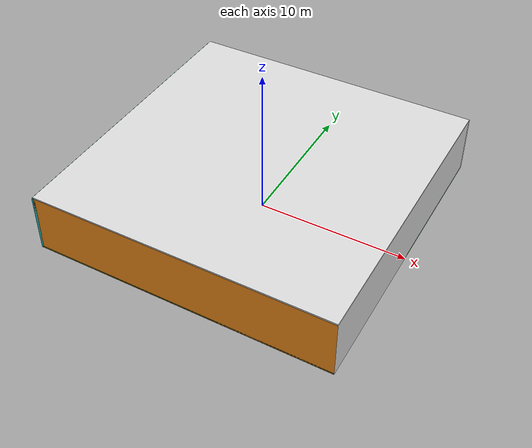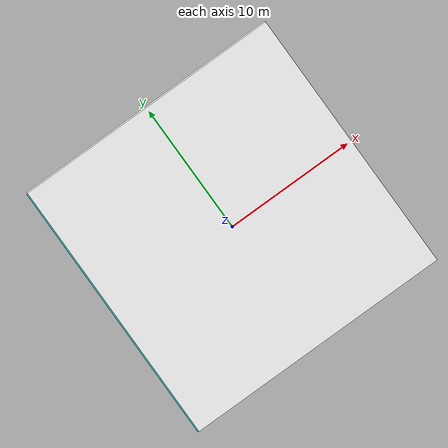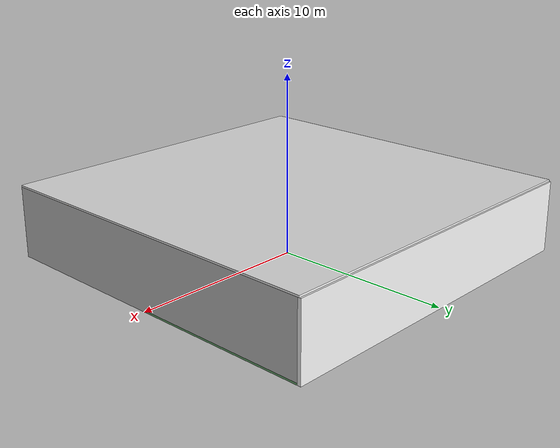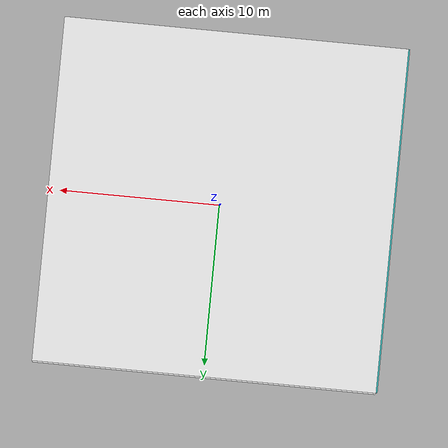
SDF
<sdf version="1.4">
 <world name="default">
  <physics type="ode">
   <max_step_size>0.001</max_step_size>
   <real_time_factor>1</real_time_factor>
   <real_time_update_rate>1000</real_time_update_rate>
   <gravity>0 0 -9.8</gravity>
  </physics>
  <scene><ambient>0.4 0.4 0.4 1</ambient><background>0.7 0.7 0.7 1</background><shadows>1</shadows></scene>
  <model name="Surrounding">
   <static>1</static>
   <link name="Ceiling">
    <collision name="Ceiling_Collision"><geometry><box><size>20 20 0.1</size></box></geometry></collision>
    <visual name="Ceiling_Visual">
     <geometry><box><size>20 20 0.1</size></box></geometry>
     <material>
      <script><uri>file://media/materials/scripts/gazebo.material</uri><name>Gazebo/WhiteGlow</name></script>
     </material>
    </visual>
    <pose>0 0 4.05 0 0 0</pose>
   </link>
   <link name="Wall_South">
    <collision name="Wall_South_Collision">
     <geometry><box><size>20 0 4</size></box></geometry>
     <pose>0 0 2 0 -0 0</pose>
    </collision>
    <visual name="Wall_South_Visual">
     <pose>0 0 2 0 -0 0</pose>
     <geometry><box><size>20 0 4</size></box></geometry>
     <material>
      <script><uri>file://media/materials/scripts/gazebo.material</uri><name>Gazebo/Orange</name></script>
     </material>
    </visual>
    <velocity_decay><linear>0</linear><angular>0</angular></velocity_decay>
    <pose>0 -10 0 0 -0 0</pose>
   </link>
   <link name="Wall_East">
    <collision name="Wall_21_Collision">
     <geometry><box><size>20 0 4</size></box></geometry>
     <pose>0 0 2 0 -0 0</pose>
    </collision>
    <visual name="Wall_21_Visual">
     <pose>0 0 2 0 -0 0</pose>
     <geometry><box><size>20 0 4</size></box></geometry>
     <material>
      <script><uri>file://media/materials/scripts/gazebo.material</uri><name>Gazebo/LightOff</name></script>
     </material>
    </visual>
    <velocity_decay><linear>0</linear><angular>0</angular></velocity_decay>
    <pose>10 0 0 0 -0 1.5708</pose>
   </link>
   <link name="Wall_North">
    <collision name="Wall_22_Collision">
     <geometry><box><size>20 0.2 4</size></box></geometry>
     <pose>0 0 2 0 -0 0</pose>
    </collision>
    <visual name="Wall_22_Visual">
     <pose>0 0 2 0 -0 0</pose>
     <geometry><box><size>20 0.2 4</size></box></geometry>
     <material>
      <script><uri>file://media/materials/scripts/gazebo.material</uri><name>Gazebo/White</name></script>
     </material>
    </visual>
    <velocity_decay><linear>0</linear><angular>0</angular></velocity_decay>
    <pose>0 10 0 0 -0 0</pose>
   </link>
   <link name="Wall_West">
    <collision name="Wall_23_Collision">
     <geometry><box><size>20 0.2 4</size></box></geometry>
     <pose>0 0 2 0 -0 0</pose>
    </collision>
    <visual name="Wall_23_Visual">
     <pose>0 0 2 0 -0 0</pose>
     <geometry><box><size>20 0.2 4</size></box></geometry>
     <material>
      <script>
       <uri>file://media/materials/scripts/gazebo.material</uri>
       <name>Gazebo/TurquoiseGlowOutline</name>
      </script>
     </material>
    </visual>
    <velocity_decay><linear>0</linear><angular>0</angular></velocity_decay>
    <pose>-10 0 0 0 0 -1.5708</pose>
   </link>
   <link name="Ground_link">
    <collision name="collision">
     <pose>0 0 .05 0 -0 0</pose>
     <geometry><box><size>20 20 0.1</size></box></geometry>
    </collision>
    <visual name="visual">
     <pose>0 0 .05 0 -0 0</pose>
     <geometry><box><size>20 20 0.1</size></box></geometry>
     <material>
      <script><uri>file://media/materials/scripts/gazebo.material</uri><name>Gazebo/GreenTransparent</name></script>
     </material>
    </visual>
   </link>
   <static>1</static>
  </model>
  <spherical_coordinates>
   <surface_model>EARTH_WGS84</surface_model>
   <latitude_deg>0</latitude_deg>
   <longitude_deg>0</longitude_deg>
   <elevation>0</elevation>
   <heading_deg>0</heading_deg>
  </spherical_coordinates>
  <light name="lightball_0" type="diffuse">
   <diffuse>0.8 0.8 0.8 1</diffuse>
   <specular>0.2 0.2 0.2 1</specular>
   <attenuation>
    <range>100</range>
    <constant>0.7</constant>
    <linear>0.01</linear>
    <quadratic>0.001</quadratic>
   </attenuation>
   <direction>-0.5 0.1 -0.9</direction>
   <pose>0.726740676656 1.87115726653 3.58168752835 0 0 0</pose>
  </light>
  <light name="lightball_1" type="diffuse">
   <diffuse>0.8 0.8 0.8 1</diffuse>
   <specular>0.2 0.2 0.2 1</specular>
   <attenuation>
    <range>100</range>
    <constant>0.7</constant>
    <linear>0.01</linear>
    <quadratic>0.001</quadratic>
   </attenuation>
   <direction>-0.5 0.1 -0.9</direction>
   <pose>-2.89785031682 -7.90008361087 0.897896944985 0 0 0</pose>
  </light>
  <light name="lightball_2" type="diffuse">
   <diffuse>0.8 0.8 0.8 1</diffuse>
   <specular>0.2 0.2 0.2 1</specular>
   <attenuation>
    <range>100</range>
    <constant>0.7</constant>
    <linear>0.01</linear>
    <quadratic>0.001</quadratic>
   </attenuation>
   <direction>-0.5 0.1 -0.9</direction>
   <pose>-8.97171014426 -6.13194956823 3.43686122142 0 0 0</pose>
  </light>
  <light name="lightball_3" type="diffuse">
   <diffuse>0.8 0.8 0.8 1</diffuse>
   <specular>0.2 0.2 0.2 1</specular>
   <attenuation>
    <range>100</range>
    <constant>0.7</constant>
    <linear>0.01</linear>
    <quadratic>0.001</quadratic>
   </attenuation>
   <direction>-0.5 0.1 -0.9</direction>
   <pose>-1.31019466437 4.59748770314 2.93540230786 0 0 0</pose>
  </light>
  <light name="lightball_4" type="diffuse">
   <diffuse>0.8 0.8 0.8 1</diffuse>
   <specular>0.2 0.2 0.2 1</specular>
   <attenuation>
    <range>100</range>
    <constant>0.7</constant>
    <linear>0.01</linear>
    <quadratic>0.001</quadratic>
   </attenuation>
   <direction>-0.5 0.1 -0.9</direction>
   <pose>-9.77157432539 1.30307808192 0.998793269808 0 0 0</pose>
  </light>
  <light name="lightball_5" type="diffuse">
   <diffuse>0.8 0.8 0.8 1</diffuse>
   <specular>0.2 0.2 0.2 1</specular>
   <attenuation>
    <range>100</range>
    <constant>0.7</constant>
    <linear>0.01</linear>
    <quadratic>0.001</quadratic>
   </attenuation>
   <direction>-0.5 0.1 -0.9</direction>
   <pose>-7.87173048509 -0.960141767844 0.901726589555 0 0 0</pose>
  </light>
  <light name="lightball_6" type="diffuse">
   <diffuse>0.8 0.8 0.8 1</diffuse>
   <specular>0.2 0.2 0.2 1</specular>
   <attenuation>
    <range>100</range>
    <constant>0.7</constant>
    <linear>0.01</linear>
    <quadratic>0.001</quadratic>
   </attenuation>
   <direction>-0.5 0.1 -0.9</direction>
   <pose>6.14209389979 8.51348150854 0.542906062294 0 0 0</pose>
  </light>
  <light name="lightball_7" type="diffuse">
   <diffuse>0.8 0.8 0.8 1</diffuse>
   <specular>0.2 0.2 0.2 1</specular>
   <attenuation>
    <range>100</range>
    <constant>0.7</constant>
    <linear>0.01</linear>
    <quadratic>0.001</quadratic>
   </attenuation>
   <direction>-0.5 0.1 -0.9</direction>
   <pose>-8.79578272602 4.1824698344 1.04509782351 0 0 0</pose>
  </light>
  <light name="lightball_8" type="diffuse">
   <diffuse>0.8 0.8 0.8 1</diffuse>
   <specular>0.2 0.2 0.2 1</specular>
   <attenuation>
    <range>100</range>
    <constant>0.7</constant>
    <linear>0.01</linear>
    <quadratic>0.001</quadratic>
   </attenuation>
   <direction>-0.5 0.1 -0.9</direction>
   <pose>3.30776748583 7.60389555807 3.79811812368 0 0 0</pose>
  </light>
  <light name="lightball_9" type="diffuse">
   <diffuse>0.8 0.8 0.8 1</diffuse>
   <specular>0.2 0.2 0.2 1</specular>
   <attenuation>
    <range>100</range>
    <constant>0.7</constant>
    <linear>0.01</linear>
    <quadratic>0.001</quadratic>
   </attenuation>
   <direction>-0.5 0.1 -0.9</direction>
   <pose>-3.02310857468 -5.7784673997 3.65561152423 0 0 0</pose>
  </light>
  <light name="lightball_10" type="diffuse">
   <diffuse>0.8 0.8 0.8 1</diffuse>
   <specular>0.2 0.2 0.2 1</specular>
   <attenuation>
    <range>100</range>
    <constant>0.7</constant>
    <linear>0.01</linear>
    <quadratic>0.001</quadratic>
   </attenuation>
   <direction>-0.5 0.1 -0.9</direction>
   <pose>-4.53858286449 -2.94774943212 3.63083007491 0 0 0</pose>
  </light>
  <light name="lightball_11" type="diffuse">
   <diffuse>0.8 0.8 0.8 1</diffuse>
   <specular>0.2 0.2 0.2 1</specular>
   <attenuation>
    <range>100</range>
    <constant>0.7</constant>
    <linear>0.01</linear>
    <quadratic>0.001</quadratic>
   </attenuation>
   <direction>-0.5 0.1 -0.9</direction>
   <pose>-2.2073387259 4.51664235009 1.24586891473 0 0 0</pose>
  </light>
  <include><uri>model://cabinet</uri><pose>8.174649208 4.26702061126 0 0 0 1.41677934002</pose></include>
 </world>
</sdf>

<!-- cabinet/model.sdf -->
<sdf version="1.5">
  <model name="cabinet">
    <static>true</static>
    <link name="cabinet_bottom_plate">
      <inertial>
        <pose>0 0 -1 0 0 0</pose>
        <inertia>
          <ixx>2.050000</ixx>
          <ixy>0</ixy>
          <ixz>0</ixz>
          <iyy>2.050000</iyy>
          <iyz>0</iyz>
          <izz>2.050000</izz>
        </inertia>
        <mass>25.000000</mass>
      </inertial>
      <collision name="cabinet_bottom_plate_geom">
        <pose>0 0 0.010000 0 0 0</pose>
        <geometry>
          <box>
            <size>0.450000 0.450000 0.020000</size>
          </box>
        </geometry>
      </collision>
      <visual name="cabinet_bottom_plate_geom_visual">
        <pose>0 0 0.010000 0 0 0</pose>
        <geometry>
          <box>
            <size>0.450000 0.450000 0.020000</size>
          </box>
        </geometry>
        <material>
          <script>
            <uri>model://media/materials/scripts/gazebo.material</uri>
            <name>Gazebo/Wood</name>
          </script>
        </material>
      </visual>
      <collision name="cabinet_bottom_plate_geom_cabinet_back_plate">
        <pose>0.235000 0 0.510000 0 0 0</pose>
        <geometry>
          <box>
            <size>0.020000 0.450000 1.020000</size>
          </box>
        </geometry>
      </collision>
      <visual name="cabinet_bottom_plate_geom_cabinet_back_plate_visual">
        <pose>0.235000 0 0.510000 0 0 0</pose>
        <geometry>
          <box>
            <size>0.020000 0.450000 1.020000</size>
          </box>
        </geometry>
        <material>
          <script>
            <uri>model://media/materials/scripts/gazebo.material</uri>
            <name>Gazebo/Wood</name>
          </script>
        </material>
      </visual>
      <collision name="cabinet_bottom_plate_geom_cabinet_left_plate">
        <pose>0 0.235000 0.510000 0 0 0</pose>
        <geometry>
          <box>
            <size>0.450000 0.020000 1.020000</size>
          </box>
        </geometry>
      </collision>
      <visual name="cabinet_bottom_plate_geom_cabinet_left_plate_visual">
        <pose>0 0.235000 0.510000 0 0 0</pose>
        <geometry>
          <box>
            <size>0.450000 0.020000 1.020000</size>
          </box>
        </geometry>
        <material>
          <script>
            <uri>model://media/materials/scripts/gazebo.material</uri>
            <name>Gazebo/Wood</name>
          </script>
        </material>
      </visual>
      <collision name="cabinet_bottom_plate_geom_cabinet_middle_plate">
        <pose>0 0 0.510000 0 0 0</pose>
        <geometry>
          <box>
            <size>0.450000 0.450000 0.020000</size>
          </box>
        </geometry>
      </collision>
      <visual name="cabinet_bottom_plate_geom_cabinet_middle_plate_visual">
        <pose>0 0 0.510000 0 0 0</pose>
        <geometry>
          <box>
            <size>0.450000 0.450000 0.020000</size>
          </box>
        </geometry>
        <material>
          <script>
            <uri>model://media/materials/scripts/gazebo.material</uri>
            <name>Gazebo/Wood</name>
          </script>
        </material>
      </visual>
      <collision name="cabinet_bottom_plate_geom_cabinet_right_plate">
        <pose>0 -0.235000 0.510000 0 0 0</pose>
        <geometry>
          <box>
            <size>0.450000 0.020000 1.020000</size>
          </box>
        </geometry>
      </collision>
      <visual name="cabinet_bottom_plate_geom_cabinet_right_plate_visual">
        <pose>0 -0.235000 0.510000 0 0 0</pose>
        <geometry>
          <box>
            <size>0.450000 0.020000 1.020000</size>
          </box>
        </geometry>
        <material>
          <script>
            <uri>model://media/materials/scripts/gazebo.material</uri>
            <name>Gazebo/Wood</name>
          </script>
        </material>
      </visual>
      <collision name="cabinet_bottom_plate_geom_cabinet_top_plate">
        <pose>0 0 1.010000 0 0 0</pose>
        <geometry>
          <box>
            <size>0.450000 0.450000 0.020000</size>
          </box>
        </geometry>
      </collision>
      <visual name="cabinet_bottom_plate_geom_cabinet_top_plate_visual">
        <pose>0 0 1.010000 0 0 0</pose>
        <geometry>
          <box>
            <size>0.450000 0.450000 0.020000</size>
          </box>
        </geometry>
        <material>
          <script>
            <uri>model://media/materials/scripts/gazebo.material</uri>
            <name>Gazebo/Wood</name>
          </script>
        </material>
      </visual>
    </link>
  </model>
</sdf>
